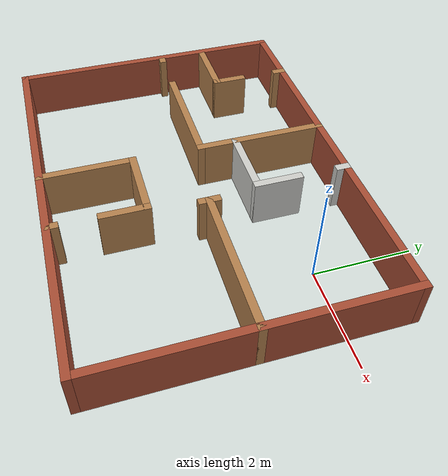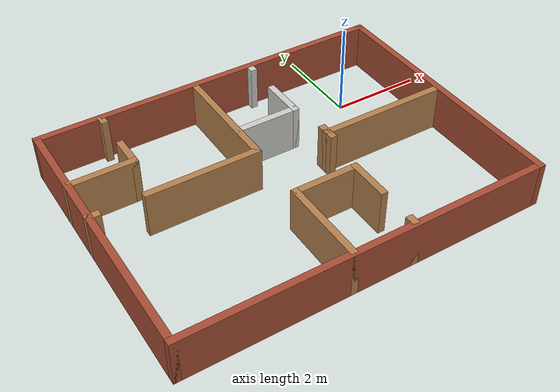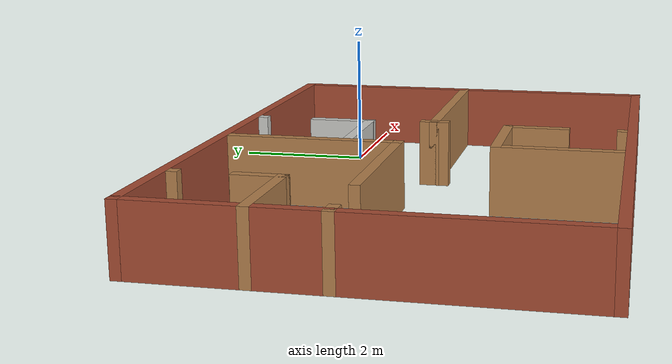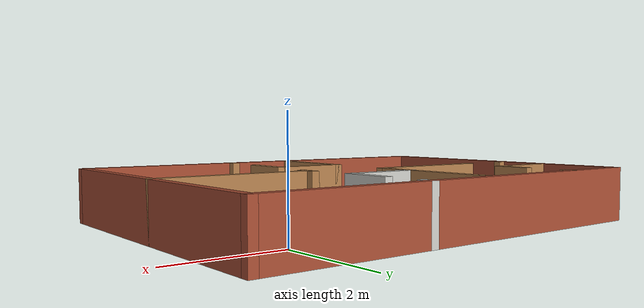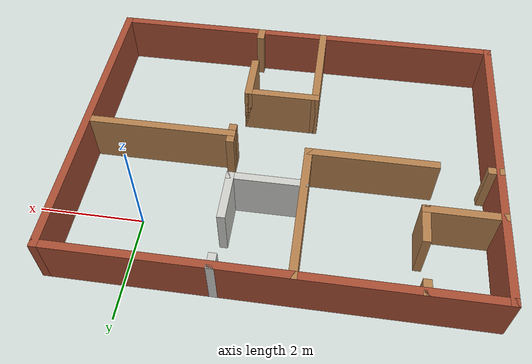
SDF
<?xml version='1.0'?>
<sdf version='1.7'>
  <model name='house1'>
    <pose>-2.534 -1.649 0 0 -0 0</pose>
    <link name='Wall_0'>
      <collision name='Wall_0_Collision'>
        <geometry>
          <box>
            <size>6 0.15 1</size>
          </box>
        </geometry>
        <pose>0 0 0.5 0 -0 0</pose>
      </collision>
      <visual name='Wall_0_Visual'>
        <pose>0 0 0.5 0 -0 0</pose>
        <geometry>
          <box>
            <size>6 0.15 1</size>
          </box>
        </geometry>
        <material>
          <script>
            <uri>file://media/materials/scripts/gazebo.material</uri>
            <name>Gazebo/Bricks</name>
          </script>
          <ambient>1 1 1 1</ambient>
        </material>
        <meta>
          <layer>0</layer>
        </meta>
      </visual>
      <pose>-3.925 0 0 0 -0 -1.5708</pose>
    </link>
    <link name='Wall_1'>
      <collision name='Wall_1_Collision'>
        <geometry>
          <box>
            <size>8.00003 0.15 1</size>
          </box>
        </geometry>
        <pose>0 0 0.5 0 -0 0</pose>
      </collision>
      <visual name='Wall_1_Visual'>
        <pose>0 0 0.5 0 -0 0</pose>
        <geometry>
          <box>
            <size>8.00003 0.15 1</size>
          </box>
        </geometry>
        <material>
          <script>
            <uri>file://media/materials/scripts/gazebo.material</uri>
            <name>Gazebo/Bricks</name>
          </script>
          <ambient>1 1 1 1</ambient>
        </material>
        <meta>
          <layer>0</layer>
        </meta>
      </visual>
      <pose>0 -2.925 0 0 -0 0</pose>
    </link>
    <link name='Wall_10'>
      <collision name='Wall_10_Collision'>
        <geometry>
          <box>
            <size>2.5 0.15 1</size>
          </box>
        </geometry>
        <pose>0 0 0.5 0 -0 0</pose>
      </collision>
      <visual name='Wall_10_Visual'>
        <pose>0 0 0.5 0 -0 0</pose>
        <geometry>
          <box>
            <size>2.5 0.15 1</size>
          </box>
        </geometry>
        <material>
          <script>
            <uri>file://media/materials/scripts/gazebo.material</uri>
            <name>Gazebo/Wood</name>
          </script>
          <ambient>1 1 1 1</ambient>
        </material>
        <meta>
          <layer>0</layer>
        </meta>
      </visual>
      <pose>-1.6 0.325 0 0 -0 3.14159</pose>
    </link>
    <link name='Wall_13'>
      <collision name='Wall_13_Collision'>
        <geometry>
          <box>
            <size>0.3 0.15 1</size>
          </box>
        </geometry>
        <pose>0 0 0.5 0 -0 0</pose>
      </collision>
      <visual name='Wall_13_Visual'>
        <pose>0 0 0.5 0 -0 0</pose>
        <geometry>
          <box>
            <size>0.3 0.15 1</size>
          </box>
        </geometry>
        <material>
          <script>
            <uri>file://media/materials/scripts/gazebo.material</uri>
            <name>Gazebo/Wood</name>
          </script>
          <ambient>1 1 1 1</ambient>
        </material>
        <meta>
          <layer>0</layer>
        </meta>
      </visual>
      <pose>-3.85 0.325 0 0 -0 0</pose>
    </link>
    <link name='Wall_16'>
      <collision name='Wall_16_Collision'>
        <geometry>
          <box>
            <size>2 0.15 1</size>
          </box>
        </geometry>
        <pose>0 0 0.5 0 -0 0</pose>
      </collision>
      <visual name='Wall_16_Visual'>
        <pose>0 0 0.5 0 -0 0</pose>
        <geometry>
          <box>
            <size>2 0.15 1</size>
          </box>
        </geometry>
        <material>
          <script>
            <uri>file://media/materials/scripts/gazebo.material</uri>
            <name>Gazebo/Wood</name>
          </script>
          <ambient>1 1 1 1</ambient>
        </material>
        <meta>
          <layer>0</layer>
        </meta>
      </visual>
      <pose>-0.425 -2 0 0 -0 1.5708</pose>
    </link>
    <link name='Wall_17'>
      <collision name='Wall_17_Collision'>
        <geometry>
          <box>
            <size>1.5 0.15 1</size>
          </box>
        </geometry>
        <pose>0 0 0.5 0 -0 0</pose>
      </collision>
      <visual name='Wall_17_Visual'>
        <pose>0 0 0.5 0 -0 0</pose>
        <geometry>
          <box>
            <size>1.5 0.15 1</size>
          </box>
        </geometry>
        <material>
          <script>
            <uri>file://media/materials/scripts/gazebo.material</uri>
            <name>Gazebo/Wood</name>
          </script>
          <ambient>1 1 1 1</ambient>
        </material>
        <meta>
          <layer>0</layer>
        </meta>
      </visual>
      <pose>0.25 -1.075 0 0 -0 0</pose>
    </link>
    <link name='Wall_18'>
      <collision name='Wall_18_Collision'>
        <geometry>
          <box>
            <size>1 0.15 1</size>
          </box>
        </geometry>
        <pose>0 0 0.5 0 -0 0</pose>
      </collision>
      <visual name='Wall_18_Visual'>
        <pose>0 0 0.5 0 -0 0</pose>
        <geometry>
          <box>
            <size>1 0.15 1</size>
          </box>
        </geometry>
        <material>
          <script>
            <uri>file://media/materials/scripts/gazebo.material</uri>
            <name>Gazebo/Wood</name>
          </script>
          <ambient>1 1 1 1</ambient>
        </material>
        <meta>
          <layer>0</layer>
        </meta>
      </visual>
      <pose>0.925 -1.5 0 0 -0 -1.5708</pose>
    </link>
    <link name='Wall_2'>
      <collision name='Wall_2_Collision'>
        <geometry>
          <box>
            <size>6 0.15 1</size>
          </box>
        </geometry>
        <pose>0 0 0.5 0 -0 0</pose>
      </collision>
      <visual name='Wall_2_Visual'>
        <pose>0 0 0.5 0 -0 0</pose>
        <geometry>
          <box>
            <size>6 0.15 1</size>
          </box>
        </geometry>
        <material>
          <script>
            <uri>file://media/materials/scripts/gazebo.material</uri>
            <name>Gazebo/Bricks</name>
          </script>
          <ambient>1 1 1 1</ambient>
        </material>
        <meta>
          <layer>0</layer>
        </meta>
      </visual>
      <pose>3.925 0 0 0 -0 1.5708</pose>
    </link>
    <link name='Wall_23'>
      <collision name='Wall_23_Collision'>
        <geometry>
          <box>
            <size>0.3 0.15 1</size>
          </box>
        </geometry>
        <pose>0 0 0.5 0 -0 0</pose>
      </collision>
      <visual name='Wall_23_Visual'>
        <pose>0 0 0.5 0 -0 0</pose>
        <geometry>
          <box>
            <size>0.3 0.15 1</size>
          </box>
        </geometry>
        <material>
          <script>
            <uri>file://media/materials/scripts/gazebo.material</uri>
            <name>Gazebo/Wood</name>
          </script>
          <ambient>1 1 1 1</ambient>
        </material>
        <meta>
          <layer>0</layer>
        </meta>
      </visual>
      <pose>0.925 -2.85 0 0 -0 1.5708</pose>
    </link>
    <link name='Wall_28'>
      <collision name='Wall_28_Collision'>
        <geometry>
          <box>
            <size>1.5 0.15 1</size>
          </box>
        </geometry>
        <pose>0 0 0.5 0 -0 0</pose>
      </collision>
      <visual name='Wall_28_Visual'>
        <pose>0 0 0.5 0 -0 0</pose>
        <geometry>
          <box>
            <size>1.5 0.15 1</size>
          </box>
        </geometry>
        <material>
          <script>
            <uri>file://media/materials/scripts/gazebo.material</uri>
            <name>Gazebo/CeilingTiled</name>
          </script>
          <ambient>1 1 1 1</ambient>
        </material>
        <meta>
          <layer>0</layer>
        </meta>
      </visual>
      <pose>0.25 1.075 0 0 -0 0</pose>
    </link>
    <link name='Wall_29'>
      <collision name='Wall_29_Collision'>
        <geometry>
          <box>
            <size>1 0.15 1</size>
          </box>
        </geometry>
        <pose>0 0 0.5 0 -0 0</pose>
      </collision>
      <visual name='Wall_29_Visual'>
        <pose>0 0 0.5 0 -0 0</pose>
        <geometry>
          <box>
            <size>1 0.15 1</size>
          </box>
        </geometry>
        <material>
          <script>
            <uri>file://media/materials/scripts/gazebo.material</uri>
            <name>Gazebo/CeilingTiled</name>
          </script>
          <ambient>1 1 1 1</ambient>
        </material>
        <meta>
          <layer>0</layer>
        </meta>
      </visual>
      <pose>0.925 1.5 0 0 -0 1.5708</pose>
    </link>
    <link name='Wall_3'>
      <collision name='Wall_3_Collision'>
        <geometry>
          <box>
            <size>8.00003 0.15 1</size>
          </box>
        </geometry>
        <pose>0 0 0.5 0 -0 0</pose>
      </collision>
      <visual name='Wall_3_Visual'>
        <pose>0 0 0.5 0 -0 0</pose>
        <geometry>
          <box>
            <size>8.00003 0.15 1</size>
          </box>
        </geometry>
        <material>
          <script>
            <uri>file://media/materials/scripts/gazebo.material</uri>
            <name>Gazebo/Bricks</name>
          </script>
          <ambient>1 1 1 1</ambient>
        </material>
        <meta>
          <layer>0</layer>
        </meta>
      </visual>
      <pose>0 2.925 0 0 -0 3.14159</pose>
    </link>
    <link name='Wall_37'>
      <collision name='Wall_37_Collision'>
        <geometry>
          <box>
            <size>0.3 0.15 1</size>
          </box>
        </geometry>
        <pose>0 0 0.5 0 -0 0</pose>
      </collision>
      <visual name='Wall_37_Visual'>
        <pose>0 0 0.5 0 -0 0</pose>
        <geometry>
          <box>
            <size>0.3 0.15 1</size>
          </box>
        </geometry>
        <material>
          <script>
            <uri>file://media/materials/scripts/gazebo.material</uri>
            <name>Gazebo/CeilingTiled</name>
          </script>
          <ambient>1 1 1 1</ambient>
        </material>
        <meta>
          <layer>0</layer>
        </meta>
      </visual>
      <pose>0.925 2.85 0 0 -0 -1.5708</pose>
    </link>
    <link name='Wall_47'>
      <collision name='Wall_47_Collision'>
        <geometry>
          <box>
            <size>0.3 0.15 1</size>
          </box>
        </geometry>
        <pose>0 0 0.5 0 -0 0</pose>
      </collision>
      <visual name='Wall_47_Visual'>
        <pose>0 0 0.5 0 -0 0</pose>
        <geometry>
          <box>
            <size>0.3 0.15 1</size>
          </box>
        </geometry>
        <material>
          <script>
            <uri>file://media/materials/scripts/gazebo.material</uri>
            <name>Gazebo/Wood</name>
          </script>
          <ambient>1 1 1 1</ambient>
        </material>
        <meta>
          <layer>0</layer>
        </meta>
      </visual>
      <pose>1.075 0.15 0 0 -0 1.5708</pose>
    </link>
    <link name='Wall_49'>
      <collision name='Wall_49_Collision'>
        <geometry>
          <box>
            <size>0.3 0.15 1</size>
          </box>
        </geometry>
        <pose>0 0 0.5 0 -0 0</pose>
      </collision>
      <visual name='Wall_49_Visual'>
        <pose>0 0 0.5 0 -0 0</pose>
        <geometry>
          <box>
            <size>0.3 0.15 1</size>
          </box>
        </geometry>
        <material>
          <script>
            <uri>file://media/materials/scripts/gazebo.material</uri>
            <name>Gazebo/Wood</name>
          </script>
          <ambient>1 1 1 1</ambient>
        </material>
        <meta>
          <layer>0</layer>
        </meta>
      </visual>
      <pose>1.075 0 0 0 -0 -1.5708</pose>
    </link>
    <link name='Wall_55'>
      <collision name='Wall_55_Collision'>
        <geometry>
          <box>
            <size>0.3 0.15 1</size>
          </box>
        </geometry>
        <pose>0 0 0.5 0 -0 0</pose>
      </collision>
      <visual name='Wall_55_Visual'>
        <pose>0 0 0.5 0 -0 0</pose>
        <geometry>
          <box>
            <size>0.3 0.15 1</size>
          </box>
        </geometry>
        <material>
          <script>
            <uri>file://media/materials/scripts/gazebo.material</uri>
            <name>Gazebo/Wood</name>
          </script>
          <ambient>1 1 1 1</ambient>
        </material>
        <meta>
          <layer>0</layer>
        </meta>
      </visual>
      <pose>-2.575 2.85 0 0 -0 -1.5708</pose>
    </link>
    <link name='Wall_58'>
      <collision name='Wall_58_Collision'>
        <geometry>
          <box>
            <size>1.5 0.15 1</size>
          </box>
        </geometry>
        <pose>0 0 0.5 0 -0 0</pose>
      </collision>
      <visual name='Wall_58_Visual'>
        <pose>0 0 0.5 0 -0 0</pose>
        <geometry>
          <box>
            <size>1.5 0.15 1</size>
          </box>
        </geometry>
        <material>
          <script>
            <uri>file://media/materials/scripts/gazebo.material</uri>
            <name>Gazebo/Wood</name>
          </script>
          <ambient>1 1 1 1</ambient>
        </material>
        <meta>
          <layer>0</layer>
        </meta>
      </visual>
      <pose>-3.25 1.325 0 0 -0 0</pose>
    </link>
    <link name='Wall_59'>
      <collision name='Wall_59_Collision'>
        <geometry>
          <box>
            <size>0.75 0.15 1</size>
          </box>
        </geometry>
        <pose>0 0 0.5 0 -0 0</pose>
      </collision>
      <visual name='Wall_59_Visual'>
        <pose>0 0 0.5 0 -0 0</pose>
        <geometry>
          <box>
            <size>0.75 0.15 1</size>
          </box>
        </geometry>
        <material>
          <script>
            <uri>file://media/materials/scripts/gazebo.material</uri>
            <name>Gazebo/Wood</name>
          </script>
          <ambient>1 1 1 1</ambient>
        </material>
        <meta>
          <layer>0</layer>
        </meta>
      </visual>
      <pose>-2.575 1.625 0 0 -0 1.5708</pose>
    </link>
    <link name='Wall_6'>
      <collision name='Wall_6_Collision'>
        <geometry>
          <box>
            <size>3 0.15 1</size>
          </box>
        </geometry>
        <pose>0 0 0.5 0 -0 0</pose>
      </collision>
      <visual name='Wall_6_Visual'>
        <pose>0 0 0.5 0 -0 0</pose>
        <geometry>
          <box>
            <size>3 0.15 1</size>
          </box>
        </geometry>
        <material>
          <script>
            <uri>file://media/materials/scripts/gazebo.material</uri>
            <name>Gazebo/Wood</name>
          </script>
          <ambient>1 1 1 1</ambient>
        </material>
        <meta>
          <layer>0</layer>
        </meta>
      </visual>
      <pose>2.5 0.075 0 0 -0 3.14159</pose>
    </link>
    <link name='Wall_9'>
      <collision name='Wall_9_Collision'>
        <geometry>
          <box>
            <size>2.75 0.15 1</size>
          </box>
        </geometry>
        <pose>0 0 0.5 0 -0 0</pose>
      </collision>
      <visual name='Wall_9_Visual'>
        <pose>0 0 0.5 0 -0 0</pose>
        <geometry>
          <box>
            <size>2.75 0.15 1</size>
          </box>
        </geometry>
        <material>
          <script>
            <uri>file://media/materials/scripts/gazebo.material</uri>
            <name>Gazebo/Wood</name>
          </script>
          <ambient>1 1 1 1</ambient>
        </material>
        <meta>
          <layer>0</layer>
        </meta>
      </visual>
      <pose>-0.425 1.625 0 0 -0 -1.5708</pose>
    </link>
    <static>1</static>
  </model>
</sdf>
